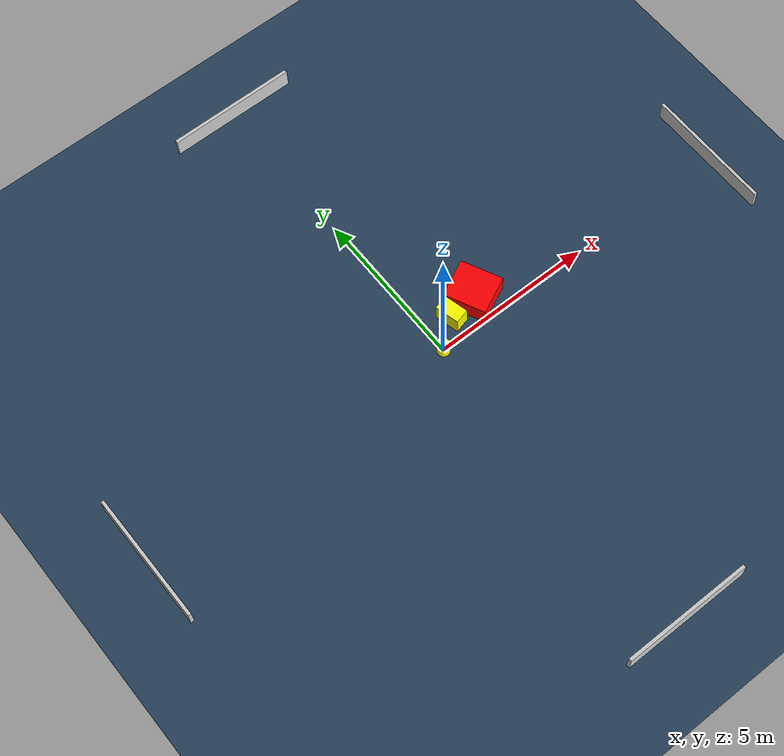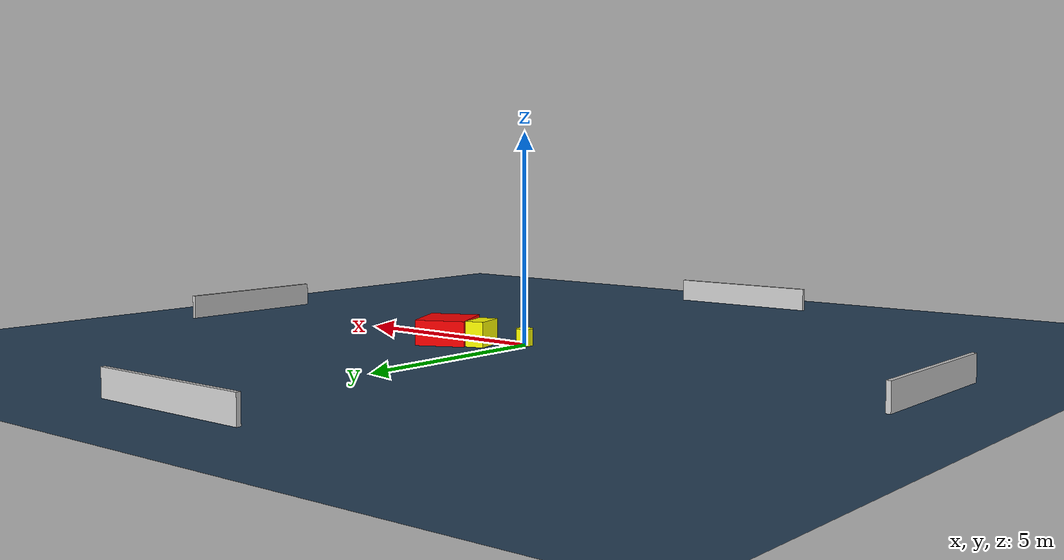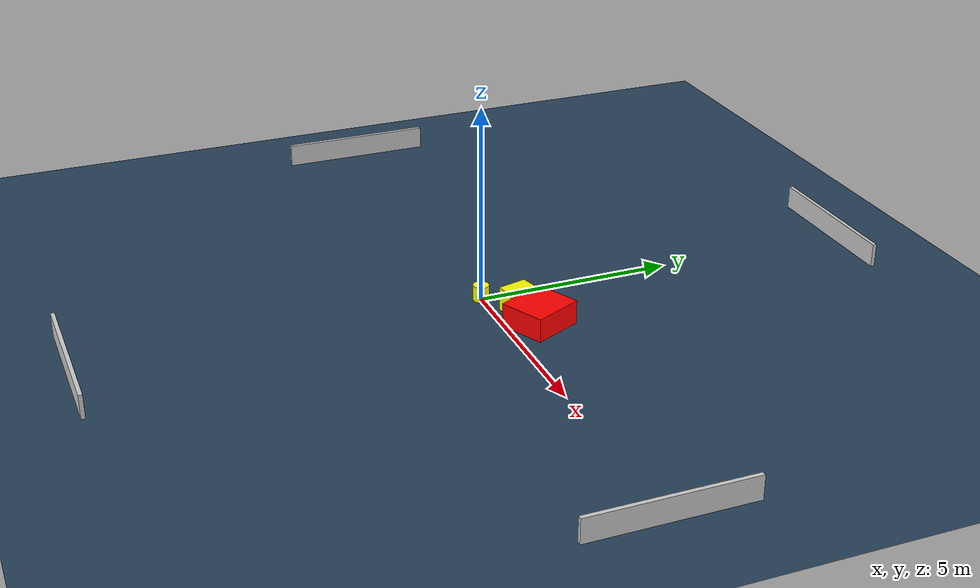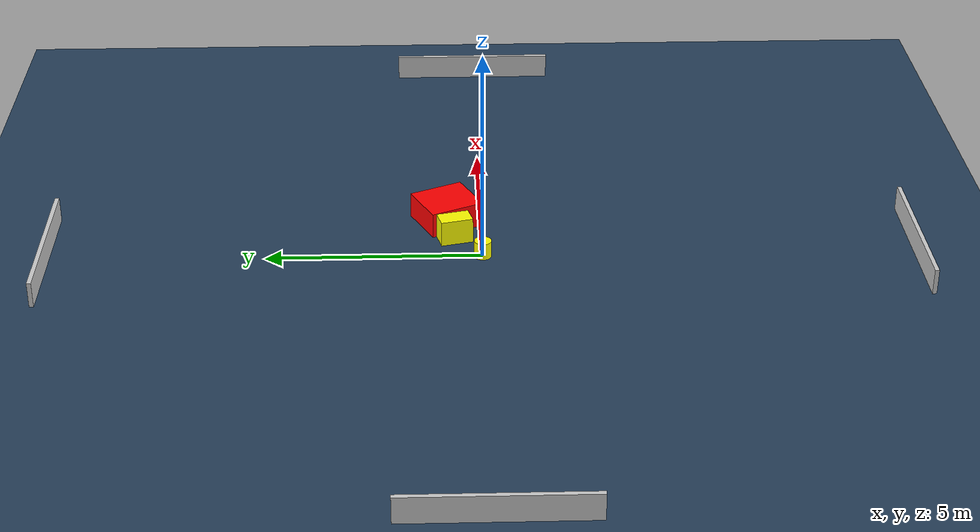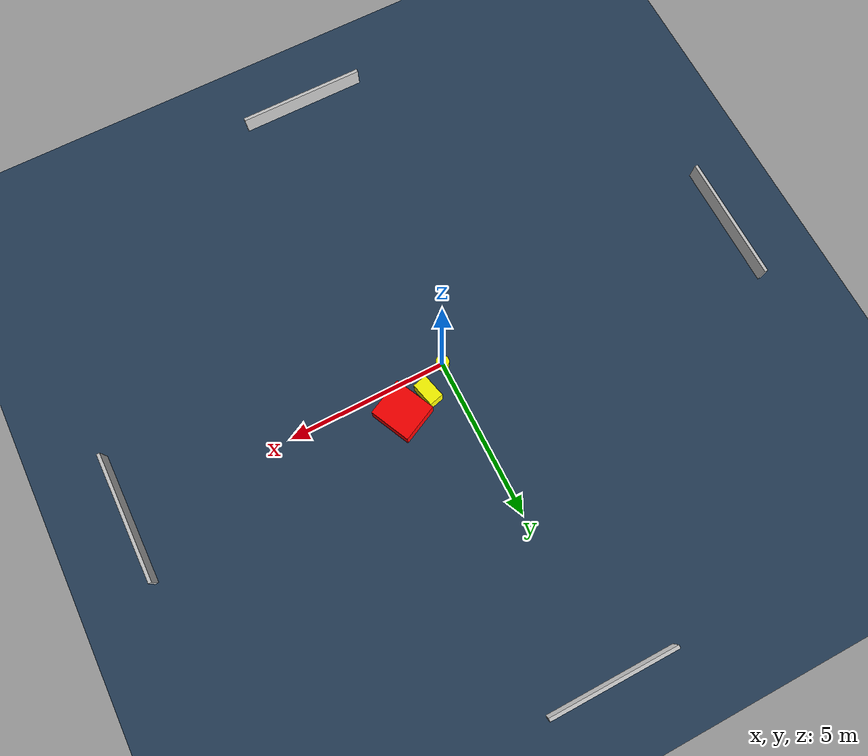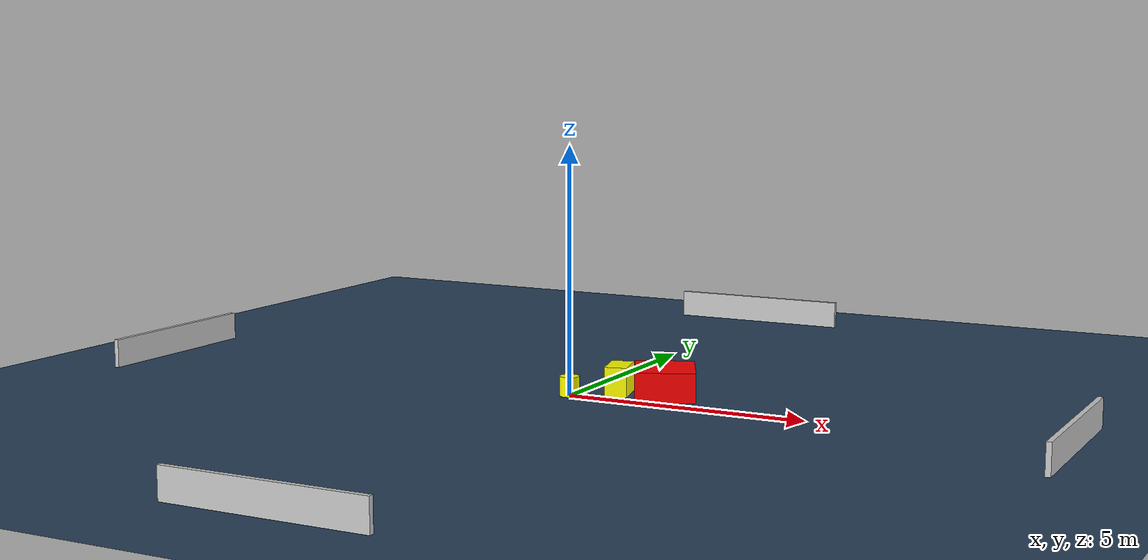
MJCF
<?xml version="1.0" ?>
<mujoco model="generated_environment">
  <option timestep="0.01" integrator="RK4" cone="elliptic"/>
  <default>
    <geom density="1"/>
  </default>
  <asset>
    <texture builtin="gradient" height="3072" name="skybox" rgb1="0.3 0.5 0.7" rgb2="0 0 0" type="skybox" width="512"/>
    <texture builtin="checker" height="300" name="groundplane" rgb1="0.2 0.3 0.4" rgb2="0.1 0.2 0.3" type="2d" width="300"/>
    <material name="groundplane" reflectance="0.2" texrepeat="5 5" texture="groundplane"/>
  </asset>
  <worldbody>
    <light dir="0 0 -1" directional="true" pos="0 0 1.5"/>
    <geom condim="3" friction="0.5 0.005 0.001" material="groundplane" name="floor" pos="0 0 0" size="0 0 0.05" type="plane"/>
    <body name="walls">
      <geom name="wall_1" condim="4" pos="-10.0 0.0 0.3" rgba="0.800000011920929 0.800000011920929 0.800000011920929 1.0" size="0.05 2.0 0.3" type="box"/>
      <geom name="wall_2" condim="4" pos="10.0 0.0 0.3" rgba="0.800000011920929 0.800000011920929 0.800000011920929 1.0" size="0.05 2.0 0.3" type="box"/>
      <geom name="wall_3" condim="4" pos="0.0 -10.0 0.3" rgba="0.800000011920929 0.800000011920929 0.800000011920929 1.0" size="2.0 0.05 0.3" type="box"/>
      <geom name="wall_4" condim="4" pos="0.0 10.0 0.3" rgba="0.800000011920929 0.800000011920929 0.800000011920929 1.0" size="2.0 0.05 0.3" type="box"/>
    </body>
    <body name="robot">
      <joint name="joint_x" type="slide" pos="0 0 0" axis="1 0 0"/>
      <joint name="joint_y" type="slide" pos="0 0 0" axis="0 1 0"/>
      <geom name="robot" type="cylinder" pos="0.0 0.0 0.2" size="0.2 0.2 0.0" mass="5.0" friction="1.0 0.005 0.0001" condim="4" rgba="1.0 1.0 0.0 1.0"/>
    </body>
    <body name="obstacle_1_movable">
      <geom name="obstacle_1_movable" condim="4" pos="0.7989198461618653 0.6311027591441626 0.3" euler="0 0 284.1430149226429" friction="0.0 0.005 0.001" rgba="1.0 1.0 0.0 1.0" size="0.3778503857932667 0.2261870188421905 0.3" type="box" mass="0.1"/>
      <joint type="free"/>
    </body>
    <body name="obstacle_2_static">
      <geom name="obstacle_2_static" condim="4" pos="1.7241684618781834 0.8073879666981092 0.3" euler="0 0 25.552539661800935" friction="0.0 0.005 0.001" rgba="1.0 0.0 0.0 1.0" size="0.6002892360706211 0.6565009696059849 0.3" type="box"/>
    </body>
  </worldbody>
  <actuator>
    <motor name="actuator_x" joint="joint_x" gear="1" ctrlrange="-1 1"/>
    <motor name="actuator_y" joint="joint_y" gear="1" ctrlrange="-1 1"/>
  </actuator>
</mujoco>
